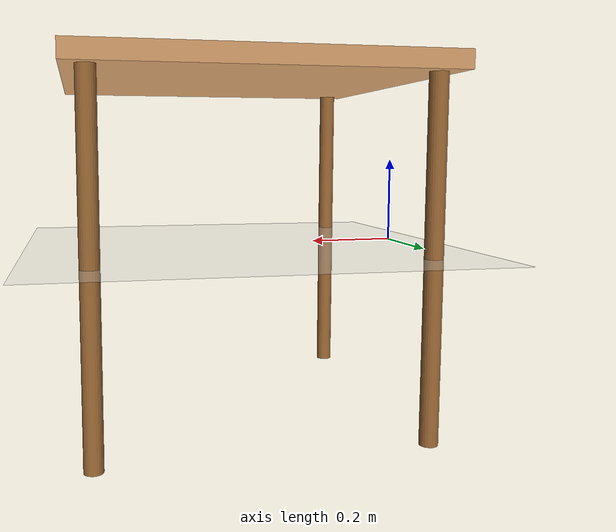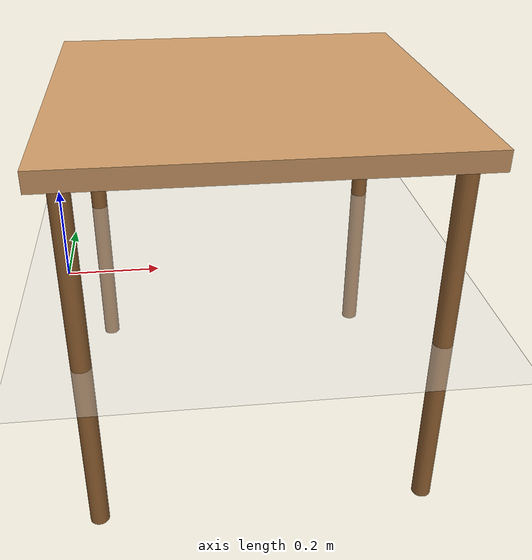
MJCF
<mujoco>
  <!-- Physics settings -->
  <!-- Newton solver with elliptic cones + noslip solver to prevent gripper slip -->
  <option timestep="0.001"
          solver="Newton"
          iterations="100"
          tolerance="1e-10"
          cone="elliptic"
          noslip_iterations="20"
          noslip_tolerance="1e-6"
          gravity="0 0 -9.81"/>

  <worldbody>
    <!-- Ground plane -->
    <geom name="floor" type="plane" size="3 3 0.01" rgba="0.9 0.9 0.9 1"
          friction="1.0 0.005 0.0001" condim="3" contype="1" conaffinity="1"/>
    <light pos="0 0 2" dir="0 0 -1" diffuse="0.8 0.8 0.8"/>

    <!-- Table (fixed, heavy to prevent movement) -->
    <body name="table" pos="0.4 0 0.4">
      <geom name="table_top" type="box" size="0.4 0.4 0.02" rgba="0.8 0.6 0.4 1"
            mass="50" friction="1.5 0.005 0.0001" condim="4"
            contype="1" conaffinity="1"
            solimp="0.99 0.99 0.001" solref="0.01 1"/>
      <geom name="table_leg1" type="cylinder" size="0.02 0.4" pos="0.35 0.35 -0.4" rgba="0.6 0.4 0.2 1" mass="5" contype="1" conaffinity="1"/>
      <geom name="table_leg2" type="cylinder" size="0.02 0.4" pos="0.35 -0.35 -0.4" rgba="0.6 0.4 0.2 1" mass="5" contype="1" conaffinity="1"/>
      <geom name="table_leg3" type="cylinder" size="0.02 0.4" pos="-0.35 0.35 -0.4" rgba="0.6 0.4 0.2 1" mass="5" contype="1" conaffinity="1"/>
      <geom name="table_leg4" type="cylinder" size="0.02 0.4" pos="-0.35 -0.35 -0.4" rgba="0.6 0.4 0.2 1" mass="5" contype="1" conaffinity="1"/>
    </body>
  </worldbody>
</mujoco>
